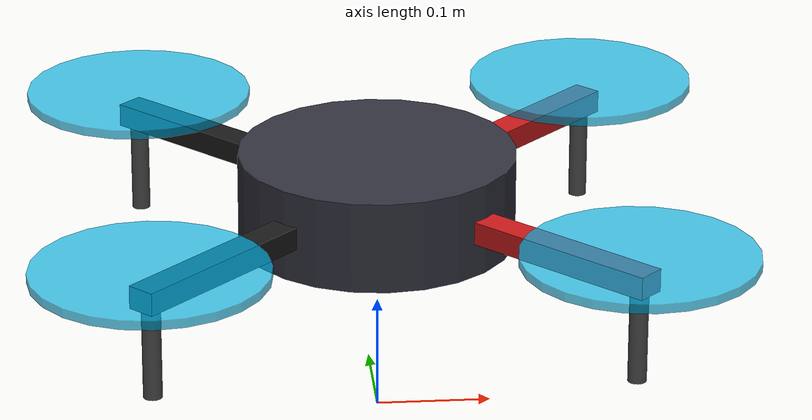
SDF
<?xml version="1.0" ?>
<sdf version="1.6">
  <model name="x3">
    <pose>0 0 0.2 0 0 0</pose>
    <static>false</static>

    <link name="base_link">
      <inertial>
        <mass>1.5</mass>
        <inertia>
          <ixx>0.08</ixx>
          <ixy>0</ixy>
          <ixz>0</ixz>
          <iyy>0.08</iyy>
          <iyz>0</iyz>
          <izz>0.12</izz>
        </inertia>
      </inertial>

      <!-- COLLISION (Simple box for collision efficiency) -->
      <collision name="base_link_collision">
        <geometry>
          <box>
            <size>0.5 0.5 0.15</size>
          </box>
        </geometry>
      </collision>

      <!-- VISUAL 1: Central Body (Dark Metallic Gray Sphere/Cylinder) -->
      <visual name="central_body_visual">
        <pose>0 0 0 0 0 0</pose>
        <geometry>
          <cylinder>
            <radius>0.12</radius>
            <length>0.08</length>
          </cylinder>
        </geometry>
        <material>
          <ambient>0.2 0.2 0.25 1</ambient>
          <diffuse>0.2 0.2 0.25 1</diffuse>
          <specular>0.8 0.8 0.8 1</specular>
        </material>
      </visual>

      <!-- VISUAL 2: Front Left Arm -->
      <visual name="arm_fl_visual">
        <pose>0.12 0.12 0 0 0 0.7854</pose>
        <geometry>
          <box>
            <size>0.25 0.025 0.02</size>
          </box>
        </geometry>
        <material>
          <ambient>0.8 0.1 0.1 1</ambient> <!-- Red for front -->
          <diffuse>0.8 0.1 0.1 1</diffuse>
        </material>
      </visual>

      <!-- VISUAL 3: Front Right Arm -->
      <visual name="arm_fr_visual">
        <pose>0.12 -0.12 0 0 0 -0.7854</pose>
        <geometry>
          <box>
            <size>0.25 0.025 0.02</size>
          </box>
        </geometry>
        <material>
          <ambient>0.8 0.1 0.1 1</ambient> <!-- Red for front -->
          <diffuse>0.8 0.1 0.1 1</diffuse>
        </material>
      </visual>

      <!-- VISUAL 4: Back Left Arm -->
      <visual name="arm_bl_visual">
        <pose>-0.12 0.12 0 0 0 -0.7854</pose>
        <geometry>
          <box>
            <size>0.25 0.025 0.02</size>
          </box>
        </geometry>
        <material>
          <ambient>0.1 0.1 0.1 1</ambient> <!-- Black for back -->
          <diffuse>0.1 0.1 0.1 1</diffuse>
        </material>
      </visual>

      <!-- VISUAL 5: Back Right Arm -->
      <visual name="arm_br_visual">
        <pose>-0.12 -0.12 0 0 0 0.7854</pose>
        <geometry>
          <box>
            <size>0.25 0.025 0.02</size>
          </box>
        </geometry>
        <material>
          <ambient>0.1 0.1 0.1 1</ambient> <!-- Black for back -->
          <diffuse>0.1 0.1 0.1 1</diffuse>
        </material>
      </visual>

      <!-- VISUAL 10: Landing Leg FL -->
      <visual name="leg_fl_visual">
        <pose>0.2 0.2 -0.05 0 0 0</pose>
        <geometry>
          <cylinder>
            <radius>0.008</radius>
            <length>0.08</length>
          </cylinder>
        </geometry>
        <material>
          <ambient>0.3 0.3 0.3 1</ambient>
          <diffuse>0.3 0.3 0.3 1</diffuse>
        </material>
      </visual>

      <!-- VISUAL 11: Landing Leg FR -->
      <visual name="leg_fr_visual">
        <pose>0.2 -0.2 -0.05 0 0 0</pose>
        <geometry>
          <cylinder>
            <radius>0.008</radius>
            <length>0.08</length>
          </cylinder>
        </geometry>
        <material>
          <ambient>0.3 0.3 0.3 1</ambient>
          <diffuse>0.3 0.3 0.3 1</diffuse>
        </material>
      </visual>

      <!-- VISUAL 12: Landing Leg BL -->
      <visual name="leg_bl_visual">
        <pose>-0.2 0.2 -0.05 0 0 0</pose>
        <geometry>
          <cylinder>
            <radius>0.008</radius>
            <length>0.08</length>
          </cylinder>
        </geometry>
        <material>
          <ambient>0.3 0.3 0.3 1</ambient>
          <diffuse>0.3 0.3 0.3 1</diffuse>
        </material>
      </visual>

      <!-- VISUAL 13: Landing Leg BR -->
      <visual name="leg_br_visual">
        <pose>-0.2 -0.2 -0.05 0 0 0</pose>
        <geometry>
          <cylinder>
            <radius>0.008</radius>
            <length>0.08</length>
          </cylinder>
        </geometry>
        <material>
          <ambient>0.3 0.3 0.3 1</ambient>
          <diffuse>0.3 0.3 0.3 1</diffuse>
        </material>
      </visual>

    </link>

    <!-- ROTOR LINKS (real physical bodies, one per propeller)    -->
    <!-- Layout (X pattern, matches the arm visuals on base_link):-->
    <!--   rotor_0 = Front-Left  (ccw)   rotor_1 = Front-Right (cw)-->
    <!--   rotor_2 = Back-Left   (cw)    rotor_3 = Back-Right  (ccw)-->
    <!-- Diagonal pairs spin the same direction so yaw torque    -->
    <!-- cancels out in hover, as required for a quadrotor.      -->

    <link name="rotor_0">
      <pose>0.2 0.2 0.02 0 0 0</pose>
      <inertial>
        <mass>0.009</mass>
        <inertia>
          <ixx>1.75e-05</ixx>
          <ixy>0</ixy>
          <ixz>0</ixz>
          <iyy>1.75e-05</iyy>
          <iyz>0</iyz>
          <izz>3.5e-05</izz>
        </inertia>
      </inertial>
      <collision name="rotor_0_collision">
        <geometry>
          <cylinder>
            <radius>0.1</radius>
            <length>0.008</length>
          </cylinder>
        </geometry>
      </collision>
      <visual name="rotor_0_visual">
        <geometry>
          <cylinder>
            <radius>0.1</radius>
            <length>0.008</length>
          </cylinder>
        </geometry>
        <material>
          <ambient>0.0 0.7 0.9 0.7</ambient>
          <diffuse>0.0 0.7 0.9 0.7</diffuse>
        </material>
      </visual>
    </link>

    <joint name="rotor_0_joint" type="revolute">
      <parent>base_link</parent>
      <child>rotor_0</child>
      <axis>
        <xyz>0 0 1</xyz>
        <limit>
          <lower>-1e16</lower>
          <upper>1e16</upper>
        </limit>
      </axis>
    </joint>

    <link name="rotor_1">
      <pose>0.2 -0.2 0.02 0 0 0</pose>
      <inertial>
        <mass>0.009</mass>
        <inertia>
          <ixx>1.75e-05</ixx>
          <ixy>0</ixy>
          <ixz>0</ixz>
          <iyy>1.75e-05</iyy>
          <iyz>0</iyz>
          <izz>3.5e-05</izz>
        </inertia>
      </inertial>
      <collision name="rotor_1_collision">
        <geometry>
          <cylinder>
            <radius>0.1</radius>
            <length>0.008</length>
          </cylinder>
        </geometry>
      </collision>
      <visual name="rotor_1_visual">
        <geometry>
          <cylinder>
            <radius>0.1</radius>
            <length>0.008</length>
          </cylinder>
        </geometry>
        <material>
          <ambient>0.0 0.7 0.9 0.7</ambient>
          <diffuse>0.0 0.7 0.9 0.7</diffuse>
        </material>
      </visual>
    </link>

    <joint name="rotor_1_joint" type="revolute">
      <parent>base_link</parent>
      <child>rotor_1</child>
      <axis>
        <xyz>0 0 1</xyz>
        <limit>
          <lower>-1e16</lower>
          <upper>1e16</upper>
        </limit>
      </axis>
    </joint>

    <link name="rotor_2">
      <pose>-0.2 0.2 0.02 0 0 0</pose>
      <inertial>
        <mass>0.009</mass>
        <inertia>
          <ixx>1.75e-05</ixx>
          <ixy>0</ixy>
          <ixz>0</ixz>
          <iyy>1.75e-05</iyy>
          <iyz>0</iyz>
          <izz>3.5e-05</izz>
        </inertia>
      </inertial>
      <collision name="rotor_2_collision">
        <geometry>
          <cylinder>
            <radius>0.1</radius>
            <length>0.008</length>
          </cylinder>
        </geometry>
      </collision>
      <visual name="rotor_2_visual">
        <geometry>
          <cylinder>
            <radius>0.1</radius>
            <length>0.008</length>
          </cylinder>
        </geometry>
        <material>
          <ambient>0.0 0.7 0.9 0.7</ambient>
          <diffuse>0.0 0.7 0.9 0.7</diffuse>
        </material>
      </visual>
    </link>

    <joint name="rotor_2_joint" type="revolute">
      <parent>base_link</parent>
      <child>rotor_2</child>
      <axis>
        <xyz>0 0 1</xyz>
        <limit>
          <lower>-1e16</lower>
          <upper>1e16</upper>
        </limit>
      </axis>
    </joint>

    <link name="rotor_3">
      <pose>-0.2 -0.2 0.02 0 0 0</pose>
      <inertial>
        <mass>0.009</mass>
        <inertia>
          <ixx>1.75e-05</ixx>
          <ixy>0</ixy>
          <ixz>0</ixz>
          <iyy>1.75e-05</iyy>
          <iyz>0</iyz>
          <izz>3.5e-05</izz>
        </inertia>
      </inertial>
      <collision name="rotor_3_collision">
        <geometry>
          <cylinder>
            <radius>0.1</radius>
            <length>0.008</length>
          </cylinder>
        </geometry>
      </collision>
      <visual name="rotor_3_visual">
        <geometry>
          <cylinder>
            <radius>0.1</radius>
            <length>0.008</length>
          </cylinder>
        </geometry>
        <material>
          <ambient>0.0 0.7 0.9 0.7</ambient>
          <diffuse>0.0 0.7 0.9 0.7</diffuse>
        </material>
      </visual>
    </link>

    <joint name="rotor_3_joint" type="revolute">
      <parent>base_link</parent>
      <child>rotor_3</child>
      <axis>
        <xyz>0 0 1</xyz>
        <limit>
          <lower>-1e16</lower>
          <upper>1e16</upper>
        </limit>
      </axis>
    </joint>

    <!-- MULTICOPTER MOTOR MODEL PLUGINS (one per rotor)          -->
    <!-- These convert commanded rotor speed into actual thrust   -->
    <!-- and drag applied to each rotor link. Required for the    -->
    <!-- MulticopterVelocityControl plugin below to work: it only -->
    <!-- computes the target rotor speeds, it does not apply any  -->
    <!-- force by itself.                                         -->

    <plugin
      filename="gz-sim-multicopter-motor-model-system"
      name="gz::sim::systems::MulticopterMotorModel">
      <robotNamespace></robotNamespace>
      <jointName>rotor_0_joint</jointName>
      <linkName>rotor_0</linkName>
      <turningDirection>ccw</turningDirection>
      <timeConstantUp>0.0125</timeConstantUp>
      <timeConstantDown>0.025</timeConstantDown>
      <maxRotVelocity>800.0</maxRotVelocity>
      <motorConstant>8.54858e-06</motorConstant>
      <momentConstant>0.016</momentConstant>
      <commandSubTopic>command/motor_speed</commandSubTopic>
      <actuator_number>0</actuator_number>
      <rotorDragCoefficient>8.06428e-05</rotorDragCoefficient>
      <rollingMomentCoefficient>1e-06</rollingMomentCoefficient>
      <rotorVelocitySlowdownSim>10</rotorVelocitySlowdownSim>
      <motorType>velocity</motorType>
    </plugin>

    <plugin
      filename="gz-sim-multicopter-motor-model-system"
      name="gz::sim::systems::MulticopterMotorModel">
      <robotNamespace></robotNamespace>
      <jointName>rotor_1_joint</jointName>
      <linkName>rotor_1</linkName>
      <turningDirection>cw</turningDirection>
      <timeConstantUp>0.0125</timeConstantUp>
      <timeConstantDown>0.025</timeConstantDown>
      <maxRotVelocity>800.0</maxRotVelocity>
      <motorConstant>8.54858e-06</motorConstant>
      <momentConstant>0.016</momentConstant>
      <commandSubTopic>command/motor_speed</commandSubTopic>
      <actuator_number>1</actuator_number>
      <rotorDragCoefficient>8.06428e-05</rotorDragCoefficient>
      <rollingMomentCoefficient>1e-06</rollingMomentCoefficient>
      <rotorVelocitySlowdownSim>10</rotorVelocitySlowdownSim>
      <motorType>velocity</motorType>
    </plugin>

    <plugin
      filename="gz-sim-multicopter-motor-model-system"
      name="gz::sim::systems::MulticopterMotorModel">
      <robotNamespace></robotNamespace>
      <jointName>rotor_2_joint</jointName>
      <linkName>rotor_2</linkName>
      <turningDirection>cw</turningDirection>
      <timeConstantUp>0.0125</timeConstantUp>
      <timeConstantDown>0.025</timeConstantDown>
      <maxRotVelocity>800.0</maxRotVelocity>
      <motorConstant>8.54858e-06</motorConstant>
      <momentConstant>0.016</momentConstant>
      <commandSubTopic>command/motor_speed</commandSubTopic>
      <actuator_number>2</actuator_number>
      <rotorDragCoefficient>8.06428e-05</rotorDragCoefficient>
      <rollingMomentCoefficient>1e-06</rollingMomentCoefficient>
      <rotorVelocitySlowdownSim>10</rotorVelocitySlowdownSim>
      <motorType>velocity</motorType>
    </plugin>

    <plugin
      filename="gz-sim-multicopter-motor-model-system"
      name="gz::sim::systems::MulticopterMotorModel">
      <robotNamespace></robotNamespace>
      <jointName>rotor_3_joint</jointName>
      <linkName>rotor_3</linkName>
      <turningDirection>ccw</turningDirection>
      <timeConstantUp>0.0125</timeConstantUp>
      <timeConstantDown>0.025</timeConstantDown>
      <maxRotVelocity>800.0</maxRotVelocity>
      <motorConstant>8.54858e-06</motorConstant>
      <momentConstant>0.016</momentConstant>
      <commandSubTopic>command/motor_speed</commandSubTopic>
      <actuator_number>3</actuator_number>
      <rotorDragCoefficient>8.06428e-05</rotorDragCoefficient>
      <rollingMomentCoefficient>1e-06</rollingMomentCoefficient>
      <rotorVelocitySlowdownSim>10</rotorVelocitySlowdownSim>
      <motorType>velocity</motorType>
    </plugin>

    <!-- MULTICOPTER VELOCITY CONTROL PLUGIN (Flight Dynamics)    -->
    <!-- Subscribes to cmd_vel (Twist), computes the rotor speeds -->
    <!-- needed to achieve that body-frame velocity/yaw rate, and -->
    <!-- writes them for the 4 MulticopterMotorModel plugins above-->
    <!-- to actually turn into thrust. robotNamespace is left     -->
    <!-- empty on purpose: gz-sim then auto-scopes the topic to   -->
    <!-- ros_gz_bridge in entrypoint_drone.sh remaps to.          -->
    <plugin
      filename="libgz-sim-multicopter-control-system.so"
      name="gz::sim::systems::MulticopterVelocityControl">
      <robotNamespace>__ROBOT_NAMESPACE__</robotNamespace>
      <commandSubTopic>cmd_vel</commandSubTopic>
      <enableSubTopic>enable</enableSubTopic>
      <comLinkName>base_link</comLinkName>

      <velocityGain>3.3 3.3 3.5</velocityGain>
      <attitudeGain>5.0 5.0 0.9</attitudeGain>
      <angularRateGain>1.5 1.5 0.09</angularRateGain>

      <maximumLinearAcceleration>2 2 2</maximumLinearAcceleration>
      <maximumLinearVelocity>5 5 5</maximumLinearVelocity>
      <maximumAngularVelocity>3 3 3</maximumAngularVelocity>

      <linearVelocityNoiseMean>0 0 0</linearVelocityNoiseMean>
      <linearVelocityNoiseStdDev>0 0 0</linearVelocityNoiseStdDev>
      <angularVelocityNoiseMean>0 0 0</angularVelocityNoiseMean>
      <angularVelocityNoiseStdDev>0 0 0</angularVelocityNoiseStdDev>

      <rotorConfiguration>
        <rotor>
          <jointName>rotor_0_joint</jointName>
          <forceConstant>8.54858e-06</forceConstant>
          <momentConstant>0.016</momentConstant>
          <direction>1</direction>
        </rotor>
        <rotor>
          <jointName>rotor_1_joint</jointName>
          <forceConstant>8.54858e-06</forceConstant>
          <momentConstant>0.016</momentConstant>
          <direction>-1</direction>
        </rotor>
        <rotor>
          <jointName>rotor_2_joint</jointName>
          <forceConstant>8.54858e-06</forceConstant>
          <momentConstant>0.016</momentConstant>
          <direction>-1</direction>
        </rotor>
        <rotor>
          <jointName>rotor_3_joint</jointName>
          <forceConstant>8.54858e-06</forceConstant>
          <momentConstant>0.016</momentConstant>
          <direction>1</direction>
        </rotor>
      </rotorConfiguration>
    </plugin>

    <!-- ODOMETRY PUBLISHER PLUGIN                               -->
    <!-- Publishes ground truth position/odometry of base_link    -->
    <plugin
      filename="gz-sim-odometry-publisher-system"
      name="gz::sim::systems::OdometryPublisher">
      <odom_frame>world</odom_frame>
      <robot_base_frame>base_link</robot_base_frame>
      <dimensions>3</dimensions>
    </plugin>

  </model>
</sdf>
